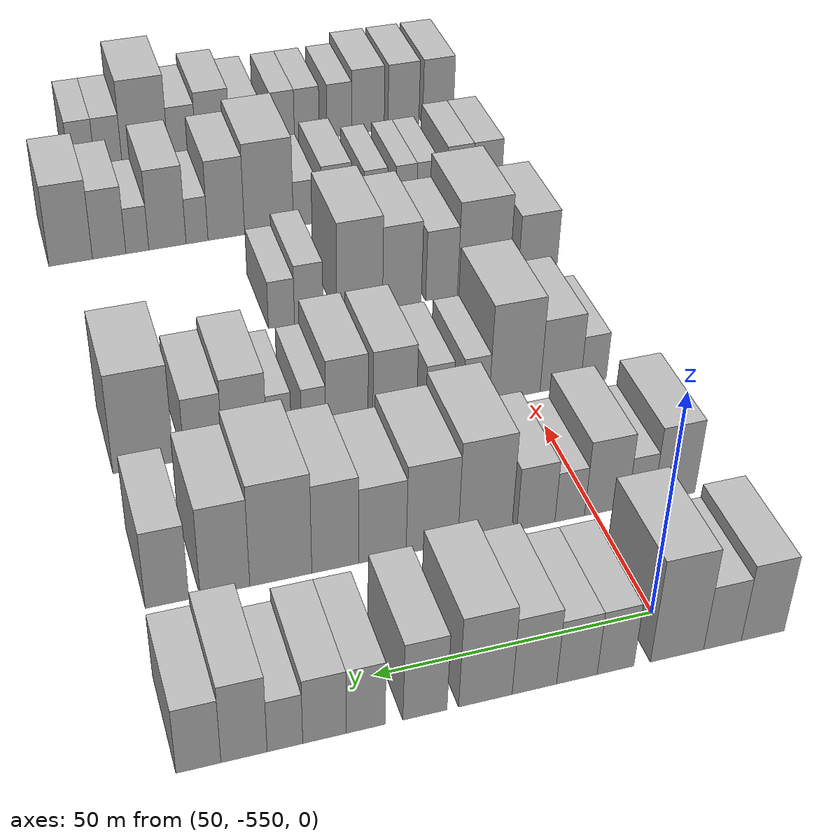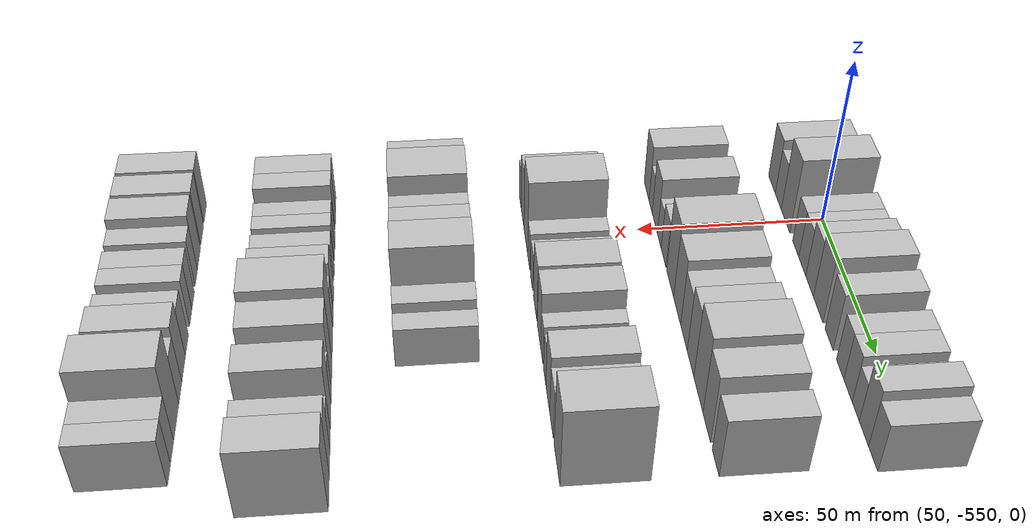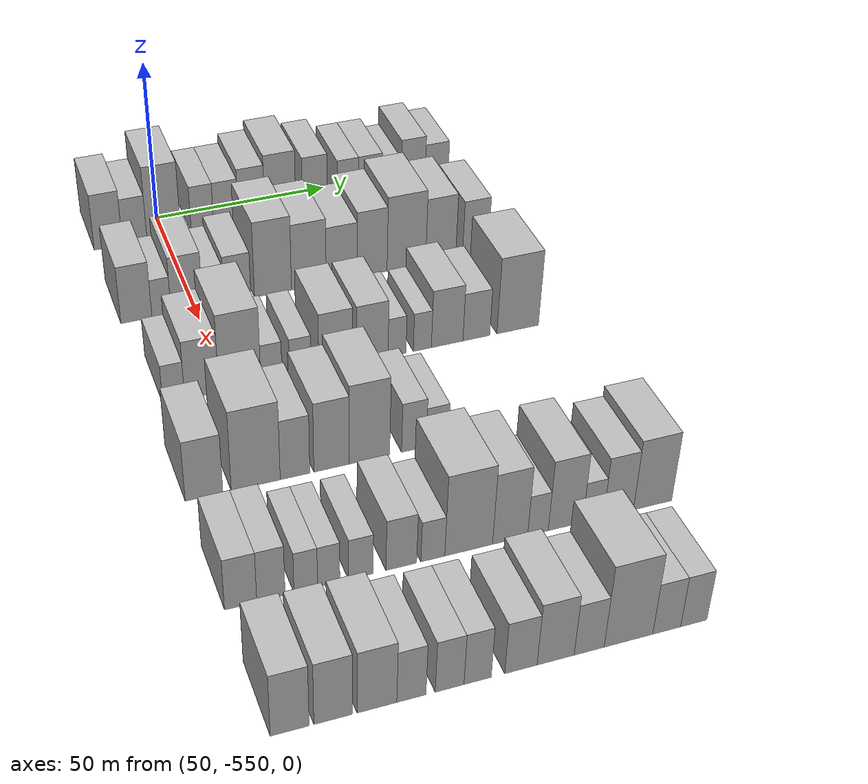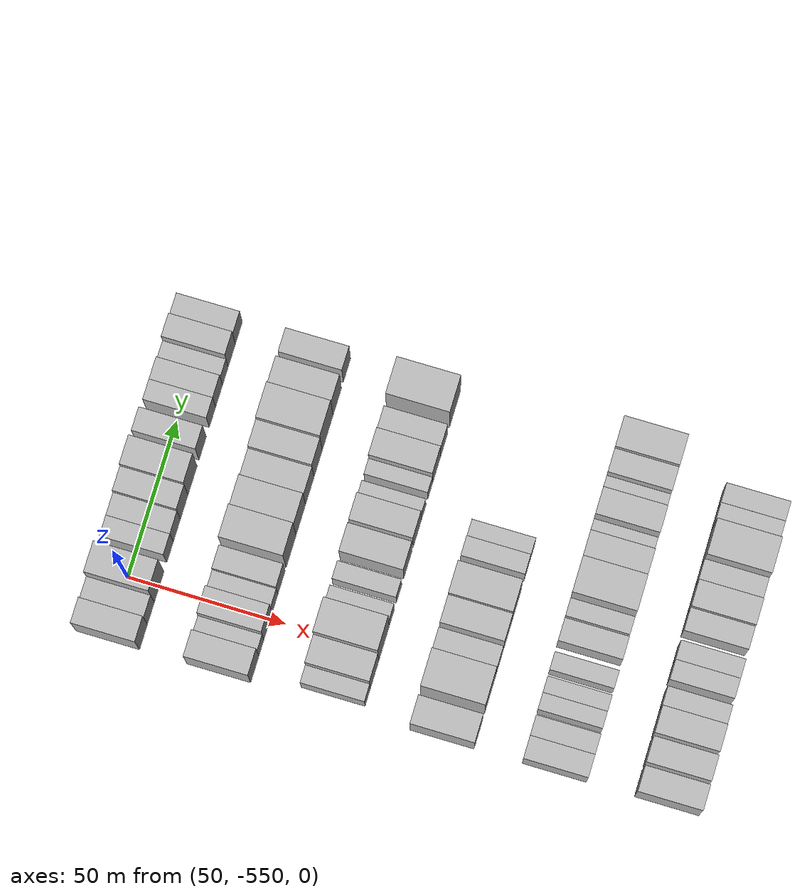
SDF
<sdf version="1.6">
 <world name="default">
  <model name="building_1">
   <static>1</static>
   <pose>50.0000 -565.9921 0 0.000000 0.000000 0.000000</pose>
   <link name="link">
    <pose>0 0 9.00 0 0 0</pose>
    <collision name="collision"><geometry><box><size>20.0000 8.0158 18.0000</size></box></geometry></collision>
    <visual name="visual">
     <cast_shadows>0</cast_shadows>
     <geometry><box><size>20.0000 8.0158 18.0000</size></box></geometry>
     <material>
      <script>
       <uri>model://HANNAS_wall/materials/scripts</uri>
       <uri>model://HANNAS_wall/materials/textures</uri>
       <name>vrc/HANNAS_wall</name>
      </script>
     </material>
    </visual>
   </link>
  </model>
  <model name="building_2">
   <static>1</static>
   <pose>50.0000 -558.4893 0 0.000000 0.000000 0.000000</pose>
   <link name="link">
    <pose>0 0 7.50 0 0 0</pose>
    <collision name="collision"><geometry><box><size>20.0000 6.9898 15.0000</size></box></geometry></collision>
    <visual name="visual">
     <cast_shadows>0</cast_shadows>
     <geometry><box><size>20.0000 6.9898 15.0000</size></box></geometry>
     <material>
      <script>
       <uri>model://HANNAS_wall/materials/scripts</uri>
       <uri>model://HANNAS_wall/materials/textures</uri>
       <name>vrc/HANNAS_wall</name>
      </script>
     </material>
    </visual>
   </link>
  </model>
  <model name="building_3">
   <static>1</static>
   <pose>50.0000 -550.1296 0 0.000000 0.000000 0.000000</pose>
   <link name="link">
    <pose>0 0 12.00 0 0 0</pose>
    <collision name="collision"><geometry><box><size>20.0000 9.7296 24.0000</size></box></geometry></collision>
    <visual name="visual">
     <cast_shadows>0</cast_shadows>
     <geometry><box><size>20.0000 9.7296 24.0000</size></box></geometry>
     <material>
      <script>
       <uri>model://HANNAS_wall/materials/scripts</uri>
       <uri>model://HANNAS_wall/materials/textures</uri>
       <name>vrc/HANNAS_wall</name>
      </script>
     </material>
    </visual>
   </link>
  </model>
  <model name="building_4">
   <static>1</static>
   <pose>50.0000 -538.9763 0 0.000000 0.000000 0.000000</pose>
   <link name="link">
    <pose>0 0 7.50 0 0 0</pose>
    <collision name="collision"><geometry><box><size>20.0000 6.5770 15.0000</size></box></geometry></collision>
    <visual name="visual">
     <cast_shadows>0</cast_shadows>
     <geometry><box><size>20.0000 6.5770 15.0000</size></box></geometry>
     <material>
      <script>
       <uri>model://HANNAS_wall/materials/scripts</uri>
       <uri>model://HANNAS_wall/materials/textures</uri>
       <name>vrc/HANNAS_wall</name>
      </script>
     </material>
    </visual>
   </link>
  </model>
  <model name="building_5">
   <static>1</static>
   <pose>50.0000 -532.0828 0 0.000000 0.000000 0.000000</pose>
   <link name="link">
    <pose>0 0 7.50 0 0 0</pose>
    <collision name="collision"><geometry><box><size>20.0000 7.2101 15.0000</size></box></geometry></collision>
    <visual name="visual">
     <cast_shadows>0</cast_shadows>
     <geometry><box><size>20.0000 7.2101 15.0000</size></box></geometry>
     <material>
      <script>
       <uri>model://HANNAS_wall/materials/scripts</uri>
       <uri>model://HANNAS_wall/materials/textures</uri>
       <name>vrc/HANNAS_wall</name>
      </script>
     </material>
    </visual>
   </link>
  </model>
  <model name="building_6">
   <static>1</static>
   <pose>50.0000 -524.5822 0 0.000000 0.000000 0.000000</pose>
   <link name="link">
    <pose>0 0 9.00 0 0 0</pose>
    <collision name="collision"><geometry><box><size>20.0000 7.7910 18.0000</size></box></geometry></collision>
    <visual name="visual">
     <cast_shadows>0</cast_shadows>
     <geometry><box><size>20.0000 7.7910 18.0000</size></box></geometry>
     <material>
      <script>
       <uri>model://HANNAS_wall/materials/scripts</uri>
       <uri>model://HANNAS_wall/materials/textures</uri>
       <name>vrc/HANNAS_wall</name>
      </script>
     </material>
    </visual>
   </link>
  </model>
  <model name="building_7">
   <static>1</static>
   <pose>50.0000 -516.0581 0 0.000000 0.000000 0.000000</pose>
   <link name="link">
    <pose>0 0 10.50 0 0 0</pose>
    <collision name="collision"><geometry><box><size>20.0000 9.2572 21.0000</size></box></geometry></collision>
    <visual name="visual">
     <cast_shadows>0</cast_shadows>
     <geometry><box><size>20.0000 9.2572 21.0000</size></box></geometry>
     <material>
      <script>
       <uri>model://HANNAS_wall/materials/scripts</uri>
       <uri>model://HANNAS_wall/materials/textures</uri>
       <name>vrc/HANNAS_wall</name>
      </script>
     </material>
    </visual>
   </link>
  </model>
  <model name="building_8">
   <static>1</static>
   <pose>50.0000 -505.6838 0 0.000000 0.000000 0.000000</pose>
   <link name="link">
    <pose>0 0 9.00 0 0 0</pose>
    <collision name="collision"><geometry><box><size>20.0000 7.4913 18.0000</size></box></geometry></collision>
    <visual name="visual">
     <cast_shadows>0</cast_shadows>
     <geometry><box><size>20.0000 7.4913 18.0000</size></box></geometry>
     <material>
      <script>
       <uri>model://HANNAS_wall/materials/scripts</uri>
       <uri>model://HANNAS_wall/materials/textures</uri>
       <name>vrc/HANNAS_wall</name>
      </script>
     </material>
    </visual>
   </link>
  </model>
  <model name="building_9">
   <static>1</static>
   <pose>50.0000 -495.6850 0 0.000000 0.000000 0.000000</pose>
   <link name="link">
    <pose>0 0 7.50 0 0 0</pose>
    <collision name="collision"><geometry><box><size>20.0000 6.5063 15.0000</size></box></geometry></collision>
    <visual name="visual">
     <cast_shadows>0</cast_shadows>
     <geometry><box><size>20.0000 6.5063 15.0000</size></box></geometry>
     <material>
      <script>
       <uri>model://HANNAS_wall/materials/scripts</uri>
       <uri>model://HANNAS_wall/materials/textures</uri>
       <name>vrc/HANNAS_wall</name>
      </script>
     </material>
    </visual>
   </link>
  </model>
  <model name="building_10">
   <static>1</static>
   <pose>50.0000 -488.8466 0 0.000000 0.000000 0.000000</pose>
   <link name="link">
    <pose>0 0 7.50 0 0 0</pose>
    <collision name="collision"><geometry><box><size>20.0000 7.1706 15.0000</size></box></geometry></collision>
    <visual name="visual">
     <cast_shadows>0</cast_shadows>
     <geometry><box><size>20.0000 7.1706 15.0000</size></box></geometry>
     <material>
      <script>
       <uri>model://HANNAS_wall/materials/scripts</uri>
       <uri>model://HANNAS_wall/materials/textures</uri>
       <name>vrc/HANNAS_wall</name>
      </script>
     </material>
    </visual>
   </link>
  </model>
  <model name="building_11">
   <static>1</static>
   <pose>50.0000 -482.3560 0 0.000000 0.000000 0.000000</pose>
   <link name="link">
    <pose>0 0 6.00 0 0 0</pose>
    <collision name="collision"><geometry><box><size>20.0000 5.8106 12.0000</size></box></geometry></collision>
    <visual name="visual">
     <cast_shadows>0</cast_shadows>
     <geometry><box><size>20.0000 5.8106 12.0000</size></box></geometry>
     <material>
      <script>
       <uri>model://HANNAS_wall/materials/scripts</uri>
       <uri>model://HANNAS_wall/materials/textures</uri>
       <name>vrc/HANNAS_wall</name>
      </script>
     </material>
    </visual>
   </link>
  </model>
  <model name="building_12">
   <static>1</static>
   <pose>50.0000 -475.7150 0 0.000000 0.000000 0.000000</pose>
   <link name="link">
    <pose>0 0 9.00 0 0 0</pose>
    <collision name="collision"><geometry><box><size>20.0000 7.4714 18.0000</size></box></geometry></collision>
    <visual name="visual">
     <cast_shadows>0</cast_shadows>
     <geometry><box><size>20.0000 7.4714 18.0000</size></box></geometry>
     <material>
      <script>
       <uri>model://HANNAS_wall/materials/scripts</uri>
       <uri>model://HANNAS_wall/materials/textures</uri>
       <name>vrc/HANNAS_wall</name>
      </script>
     </material>
    </visual>
   </link>
  </model>
  <model name="building_13">
   <static>1</static>
   <pose>50.0000 -468.3772 0 0.000000 0.000000 0.000000</pose>
   <link name="link">
    <pose>0 0 7.50 0 0 0</pose>
    <collision name="collision"><geometry><box><size>20.0000 7.2043 15.0000</size></box></geometry></collision>
    <visual name="visual">
     <cast_shadows>0</cast_shadows>
     <geometry><box><size>20.0000 7.2043 15.0000</size></box></geometry>
     <material>
      <script>
       <uri>model://HANNAS_wall/materials/scripts</uri>
       <uri>model://HANNAS_wall/materials/textures</uri>
       <name>vrc/HANNAS_wall</name>
      </script>
     </material>
    </visual>
   </link>
  </model>
  <model name="building_125">
   <static>1</static>
   <pose>85.0000 -565.8292 0 0.000000 0.000000 0.000000</pose>
   <link name="link">
    <pose>0 0 9.00 0 0 0</pose>
    <collision name="collision"><geometry><box><size>20.0000 8.3416 18.0000</size></box></geometry></collision>
    <visual name="visual">
     <cast_shadows>0</cast_shadows>
     <geometry><box><size>20.0000 8.3416 18.0000</size></box></geometry>
     <material>
      <script>
       <uri>model://HANNAS_wall/materials/scripts</uri>
       <uri>model://HANNAS_wall/materials/textures</uri>
       <name>vrc/HANNAS_wall</name>
      </script>
     </material>
    </visual>
   </link>
  </model>
  <model name="building_126">
   <static>1</static>
   <pose>85.0000 -559.0594 0 0.000000 0.000000 0.000000</pose>
   <link name="link">
    <pose>0 0 6.00 0 0 0</pose>
    <collision name="collision"><geometry><box><size>20.0000 5.1981 12.0000</size></box></geometry></collision>
    <visual name="visual">
     <cast_shadows>0</cast_shadows>
     <geometry><box><size>20.0000 5.1981 12.0000</size></box></geometry>
     <material>
      <script>
       <uri>model://HANNAS_wall/materials/scripts</uri>
       <uri>model://HANNAS_wall/materials/textures</uri>
       <name>vrc/HANNAS_wall</name>
      </script>
     </material>
    </visual>
   </link>
  </model>
  <model name="building_127">
   <static>1</static>
   <pose>85.0000 -552.1614 0 0.000000 0.000000 0.000000</pose>
   <link name="link">
    <pose>0 0 9.00 0 0 0</pose>
    <collision name="collision"><geometry><box><size>20.0000 8.5979 18.0000</size></box></geometry></collision>
    <visual name="visual">
     <cast_shadows>0</cast_shadows>
     <geometry><box><size>20.0000 8.5979 18.0000</size></box></geometry>
     <material>
      <script>
       <uri>model://HANNAS_wall/materials/scripts</uri>
       <uri>model://HANNAS_wall/materials/textures</uri>
       <name>vrc/HANNAS_wall</name>
      </script>
     </material>
    </visual>
   </link>
  </model>
  <model name="building_128">
   <static>1</static>
   <pose>85.0000 -544.9417 0 0.000000 0.000000 0.000000</pose>
   <link name="link">
    <pose>0 0 6.00 0 0 0</pose>
    <collision name="collision"><geometry><box><size>20.0000 5.8415 12.0000</size></box></geometry></collision>
    <visual name="visual">
     <cast_shadows>0</cast_shadows>
     <geometry><box><size>20.0000 5.8415 12.0000</size></box></geometry>
     <material>
      <script>
       <uri>model://HANNAS_wall/materials/scripts</uri>
       <uri>model://HANNAS_wall/materials/textures</uri>
       <name>vrc/HANNAS_wall</name>
      </script>
     </material>
    </visual>
   </link>
  </model>
  <model name="building_129">
   <static>1</static>
   <pose>85.0000 -538.3204 0 0.000000 0.000000 0.000000</pose>
   <link name="link">
    <pose>0 0 7.50 0 0 0</pose>
    <collision name="collision"><geometry><box><size>20.0000 7.4013 15.0000</size></box></geometry></collision>
    <visual name="visual">
     <cast_shadows>0</cast_shadows>
     <geometry><box><size>20.0000 7.4013 15.0000</size></box></geometry>
     <material>
      <script>
       <uri>model://HANNAS_wall/materials/scripts</uri>
       <uri>model://HANNAS_wall/materials/textures</uri>
       <name>vrc/HANNAS_wall</name>
      </script>
     </material>
    </visual>
   </link>
  </model>
  <model name="building_130">
   <static>1</static>
   <pose>85.0000 -528.4591 0 0.000000 0.000000 0.000000</pose>
   <link name="link">
    <pose>0 0 12.00 0 0 0</pose>
    <collision name="collision"><geometry><box><size>20.0000 10.3213 24.0000</size></box></geometry></collision>
    <visual name="visual">
     <cast_shadows>0</cast_shadows>
     <geometry><box><size>20.0000 10.3213 24.0000</size></box></geometry>
     <material>
      <script>
       <uri>model://HANNAS_wall/materials/scripts</uri>
       <uri>model://HANNAS_wall/materials/textures</uri>
       <name>vrc/HANNAS_wall</name>
      </script>
     </material>
    </visual>
   </link>
  </model>
  <model name="building_131">
   <static>1</static>
   <pose>85.0000 -518.3940 0 0.000000 0.000000 0.000000</pose>
   <link name="link">
    <pose>0 0 10.50 0 0 0</pose>
    <collision name="collision"><geometry><box><size>20.0000 9.8088 21.0000</size></box></geometry></collision>
    <visual name="visual">
     <cast_shadows>0</cast_shadows>
     <geometry><box><size>20.0000 9.8088 21.0000</size></box></geometry>
     <material>
      <script>
       <uri>model://HANNAS_wall/materials/scripts</uri>
       <uri>model://HANNAS_wall/materials/textures</uri>
       <name>vrc/HANNAS_wall</name>
      </script>
     </material>
    </visual>
   </link>
  </model>
  <model name="building_132">
   <static>1</static>
   <pose>85.0000 -509.0591 0 0.000000 0.000000 0.000000</pose>
   <link name="link">
    <pose>0 0 9.00 0 0 0</pose>
    <collision name="collision"><geometry><box><size>20.0000 8.8610 18.0000</size></box></geometry></collision>
    <visual name="visual">
     <cast_shadows>0</cast_shadows>
     <geometry><box><size>20.0000 8.8610 18.0000</size></box></geometry>
     <material>
      <script>
       <uri>model://HANNAS_wall/materials/scripts</uri>
       <uri>model://HANNAS_wall/materials/textures</uri>
       <name>vrc/HANNAS_wall</name>
      </script>
     </material>
    </visual>
   </link>
  </model>
  <model name="building_133">
   <static>1</static>
   <pose>85.0000 -500.3334 0 0.000000 0.000000 0.000000</pose>
   <link name="link">
    <pose>0 0 10.50 0 0 0</pose>
    <collision name="collision"><geometry><box><size>20.0000 8.5903 21.0000</size></box></geometry></collision>
    <visual name="visual">
     <cast_shadows>0</cast_shadows>
     <geometry><box><size>20.0000 8.5903 21.0000</size></box></geometry>
     <material>
      <script>
       <uri>model://HANNAS_wall/materials/scripts</uri>
       <uri>model://HANNAS_wall/materials/textures</uri>
       <name>vrc/HANNAS_wall</name>
      </script>
     </material>
    </visual>
   </link>
  </model>
  <model name="building_134">
   <static>1</static>
   <pose>85.0000 -490.4166 0 0.000000 0.000000 0.000000</pose>
   <link name="link">
    <pose>0 0 12.00 0 0 0</pose>
    <collision name="collision"><geometry><box><size>20.0000 11.2434 24.0000</size></box></geometry></collision>
    <visual name="visual">
     <cast_shadows>0</cast_shadows>
     <geometry><box><size>20.0000 11.2434 24.0000</size></box></geometry>
     <material>
      <script>
       <uri>model://HANNAS_wall/materials/scripts</uri>
       <uri>model://HANNAS_wall/materials/textures</uri>
       <name>vrc/HANNAS_wall</name>
      </script>
     </material>
    </visual>
   </link>
  </model>
  <model name="building_135">
   <static>1</static>
   <pose>85.0000 -480.3607 0 0.000000 0.000000 0.000000</pose>
   <link name="link">
    <pose>0 0 10.50 0 0 0</pose>
    <collision name="collision"><geometry><box><size>20.0000 8.8685 21.0000</size></box></geometry></collision>
    <visual name="visual">
     <cast_shadows>0</cast_shadows>
     <geometry><box><size>20.0000 8.8685 21.0000</size></box></geometry>
     <material>
      <script>
       <uri>model://HANNAS_wall/materials/scripts</uri>
       <uri>model://HANNAS_wall/materials/textures</uri>
       <name>vrc/HANNAS_wall</name>
      </script>
     </material>
    </visual>
   </link>
  </model>
  <model name="building_136">
   <static>1</static>
   <pose>85.0000 -470.0958 0 0.000000 0.000000 0.000000</pose>
   <link name="link">
    <pose>0 0 9.00 0 0 0</pose>
    <collision name="collision"><geometry><box><size>20.0000 7.6611 18.0000</size></box></geometry></collision>
    <visual name="visual">
     <cast_shadows>0</cast_shadows>
     <geometry><box><size>20.0000 7.6611 18.0000</size></box></geometry>
     <material>
      <script>
       <uri>model://HANNAS_wall/materials/scripts</uri>
       <uri>model://HANNAS_wall/materials/textures</uri>
       <name>vrc/HANNAS_wall</name>
      </script>
     </material>
    </visual>
   </link>
  </model>
  <model name="building_254">
   <static>1</static>
   <pose>120.0000 -564.2297 0 0.000000 0.000000 0.000000</pose>
   <link name="link">
    <pose>0 0 6.00 0 0 0</pose>
    <collision name="collision"><geometry><box><size>20.0000 5.5406 12.0000</size></box></geometry></collision>
    <visual name="visual">
     <cast_shadows>0</cast_shadows>
     <geometry><box><size>20.0000 5.5406 12.0000</size></box></geometry>
     <material>
      <script>
       <uri>model://HANNAS_wall/materials/scripts</uri>
       <uri>model://HANNAS_wall/materials/textures</uri>
       <name>vrc/HANNAS_wall</name>
      </script>
     </material>
    </visual>
   </link>
  </model>
  <model name="building_255">
   <static>1</static>
   <pose>120.0000 -557.0801 0 0.000000 0.000000 0.000000</pose>
   <link name="link">
    <pose>0 0 9.00 0 0 0</pose>
    <collision name="collision"><geometry><box><size>20.0000 8.7586 18.0000</size></box></geometry></collision>
    <visual name="visual">
     <cast_shadows>0</cast_shadows>
     <geometry><box><size>20.0000 8.7586 18.0000</size></box></geometry>
     <material>
      <script>
       <uri>model://HANNAS_wall/materials/scripts</uri>
       <uri>model://HANNAS_wall/materials/textures</uri>
       <name>vrc/HANNAS_wall</name>
      </script>
     </material>
    </visual>
   </link>
  </model>
  <model name="building_256">
   <static>1</static>
   <pose>120.0000 -547.2849 0 0.000000 0.000000 0.000000</pose>
   <link name="link">
    <pose>0 0 12.00 0 0 0</pose>
    <collision name="collision"><geometry><box><size>20.0000 10.8317 24.0000</size></box></geometry></collision>
    <visual name="visual">
     <cast_shadows>0</cast_shadows>
     <geometry><box><size>20.0000 10.8317 24.0000</size></box></geometry>
     <material>
      <script>
       <uri>model://HANNAS_wall/materials/scripts</uri>
       <uri>model://HANNAS_wall/materials/textures</uri>
       <name>vrc/HANNAS_wall</name>
      </script>
     </material>
    </visual>
   </link>
  </model>
  <model name="building_257">
   <static>1</static>
   <pose>120.0000 -539.1051 0 0.000000 0.000000 0.000000</pose>
   <link name="link">
    <pose>0 0 6.00 0 0 0</pose>
    <collision name="collision"><geometry><box><size>20.0000 5.5280 12.0000</size></box></geometry></collision>
    <visual name="visual">
     <cast_shadows>0</cast_shadows>
     <geometry><box><size>20.0000 5.5280 12.0000</size></box></geometry>
     <material>
      <script>
       <uri>model://HANNAS_wall/materials/scripts</uri>
       <uri>model://HANNAS_wall/materials/textures</uri>
       <name>vrc/HANNAS_wall</name>
      </script>
     </material>
    </visual>
   </link>
  </model>
  <model name="building_258">
   <static>1</static>
   <pose>120.0000 -531.5029 0 0.000000 0.000000 0.000000</pose>
   <link name="link">
    <pose>0 0 6.00 0 0 0</pose>
    <collision name="collision"><geometry><box><size>20.0000 5.6763 12.0000</size></box></geometry></collision>
    <visual name="visual">
     <cast_shadows>0</cast_shadows>
     <geometry><box><size>20.0000 5.6763 12.0000</size></box></geometry>
     <material>
      <script>
       <uri>model://HANNAS_wall/materials/scripts</uri>
       <uri>model://HANNAS_wall/materials/textures</uri>
       <name>vrc/HANNAS_wall</name>
      </script>
     </material>
    </visual>
   </link>
  </model>
  <model name="building_259">
   <static>1</static>
   <pose>120.0000 -522.1753 0 0.000000 0.000000 0.000000</pose>
   <link name="link">
    <pose>0 0 9.00 0 0 0</pose>
    <collision name="collision"><geometry><box><size>20.0000 8.9789 18.0000</size></box></geometry></collision>
    <visual name="visual">
     <cast_shadows>0</cast_shadows>
     <geometry><box><size>20.0000 8.9789 18.0000</size></box></geometry>
     <material>
      <script>
       <uri>model://HANNAS_wall/materials/scripts</uri>
       <uri>model://HANNAS_wall/materials/textures</uri>
       <name>vrc/HANNAS_wall</name>
      </script>
     </material>
    </visual>
   </link>
  </model>
  <model name="building_260">
   <static>1</static>
   <pose>120.0000 -512.4110 0 0.000000 0.000000 0.000000</pose>
   <link name="link">
    <pose>0 0 9.00 0 0 0</pose>
    <collision name="collision"><geometry><box><size>20.0000 8.5497 18.0000</size></box></geometry></collision>
    <visual name="visual">
     <cast_shadows>0</cast_shadows>
     <geometry><box><size>20.0000 8.5497 18.0000</size></box></geometry>
     <material>
      <script>
       <uri>model://HANNAS_wall/materials/scripts</uri>
       <uri>model://HANNAS_wall/materials/textures</uri>
       <name>vrc/HANNAS_wall</name>
      </script>
     </material>
    </visual>
   </link>
  </model>
  <model name="building_261">
   <static>1</static>
   <pose>120.0000 -505.6870 0 0.000000 0.000000 0.000000</pose>
   <link name="link">
    <pose>0 0 6.00 0 0 0</pose>
    <collision name="collision"><geometry><box><size>20.0000 4.8983 12.0000</size></box></geometry></collision>
    <visual name="visual">
     <cast_shadows>0</cast_shadows>
     <geometry><box><size>20.0000 4.8983 12.0000</size></box></geometry>
     <material>
      <script>
       <uri>model://HANNAS_wall/materials/scripts</uri>
       <uri>model://HANNAS_wall/materials/textures</uri>
       <name>vrc/HANNAS_wall</name>
      </script>
     </material>
    </visual>
   </link>
  </model>
  <model name="building_262">
   <static>1</static>
   <pose>120.0000 -498.7695 0 0.000000 0.000000 0.000000</pose>
   <link name="link">
    <pose>0 0 6.00 0 0 0</pose>
    <collision name="collision"><geometry><box><size>20.0000 4.9367 12.0000</size></box></geometry></collision>
    <visual name="visual">
     <cast_shadows>0</cast_shadows>
     <geometry><box><size>20.0000 4.9367 12.0000</size></box></geometry>
     <material>
      <script>
       <uri>model://HANNAS_wall/materials/scripts</uri>
       <uri>model://HANNAS_wall/materials/textures</uri>
       <name>vrc/HANNAS_wall</name>
      </script>
     </material>
    </visual>
   </link>
  </model>
  <model name="building_263">
   <static>1</static>
   <pose>120.0000 -491.9467 0 0.000000 0.000000 0.000000</pose>
   <link name="link">
    <pose>0 0 9.00 0 0 0</pose>
    <collision name="collision"><geometry><box><size>20.0000 8.7089 18.0000</size></box></geometry></collision>
    <visual name="visual">
     <cast_shadows>0</cast_shadows>
     <geometry><box><size>20.0000 8.7089 18.0000</size></box></geometry>
     <material>
      <script>
       <uri>model://HANNAS_wall/materials/scripts</uri>
       <uri>model://HANNAS_wall/materials/textures</uri>
       <name>vrc/HANNAS_wall</name>
      </script>
     </material>
    </visual>
   </link>
  </model>
  <model name="building_264">
   <static>1</static>
   <pose>120.0000 -483.8499 0 0.000000 0.000000 0.000000</pose>
   <link name="link">
    <pose>0 0 7.50 0 0 0</pose>
    <collision name="collision"><geometry><box><size>20.0000 7.4847 15.0000</size></box></geometry></collision>
    <visual name="visual">
     <cast_shadows>0</cast_shadows>
     <geometry><box><size>20.0000 7.4847 15.0000</size></box></geometry>
     <material>
      <script>
       <uri>model://HANNAS_wall/materials/scripts</uri>
       <uri>model://HANNAS_wall/materials/textures</uri>
       <name>vrc/HANNAS_wall</name>
      </script>
     </material>
    </visual>
   </link>
  </model>
  <model name="building_265">
   <static>1</static>
   <pose>120.0000 -472.2517 0 0.000000 0.000000 0.000000</pose>
   <link name="link">
    <pose>0 0 12.00 0 0 0</pose>
    <collision name="collision"><geometry><box><size>20.0000 11.7115 24.0000</size></box></geometry></collision>
    <visual name="visual">
     <cast_shadows>0</cast_shadows>
     <geometry><box><size>20.0000 11.7115 24.0000</size></box></geometry>
     <material>
      <script>
       <uri>model://HANNAS_wall/materials/scripts</uri>
       <uri>model://HANNAS_wall/materials/textures</uri>
       <name>vrc/HANNAS_wall</name>
      </script>
     </material>
    </visual>
   </link>
  </model>
  <model name="building_386">
   <static>1</static>
   <pose>155.0000 -565.5117 0 0.000000 0.000000 0.000000</pose>
   <link name="link">
    <pose>0 0 9.00 0 0 0</pose>
    <collision name="collision"><geometry><box><size>20.0000 8.9766 18.0000</size></box></geometry></collision>
    <visual name="visual">
     <cast_shadows>0</cast_shadows>
     <geometry><box><size>20.0000 8.9766 18.0000</size></box></geometry>
     <material>
      <script>
       <uri>model://HANNAS_wall/materials/scripts</uri>
       <uri>model://HANNAS_wall/materials/textures</uri>
       <name>vrc/HANNAS_wall</name>
      </script>
     </material>
    </visual>
   </link>
  </model>
  <model name="building_387">
   <static>1</static>
   <pose>155.0000 -553.1045 0 0.000000 0.000000 0.000000</pose>
   <link name="link">
    <pose>0 0 12.00 0 0 0</pose>
    <collision name="collision"><geometry><box><size>20.0000 11.8378 24.0000</size></box></geometry></collision>
    <visual name="visual">
     <cast_shadows>0</cast_shadows>
     <geometry><box><size>20.0000 11.8378 24.0000</size></box></geometry>
     <material>
      <script>
       <uri>model://HANNAS_wall/materials/scripts</uri>
       <uri>model://HANNAS_wall/materials/textures</uri>
       <name>vrc/HANNAS_wall</name>
      </script>
     </material>
    </visual>
   </link>
  </model>
  <model name="building_388">
   <static>1</static>
   <pose>155.0000 -543.5742 0 0.000000 0.000000 0.000000</pose>
   <link name="link">
    <pose>0 0 9.00 0 0 0</pose>
    <collision name="collision"><geometry><box><size>20.0000 7.2228 18.0000</size></box></geometry></collision>
    <visual name="visual">
     <cast_shadows>0</cast_shadows>
     <geometry><box><size>20.0000 7.2228 18.0000</size></box></geometry>
     <material>
      <script>
       <uri>model://HANNAS_wall/materials/scripts</uri>
       <uri>model://HANNAS_wall/materials/textures</uri>
       <name>vrc/HANNAS_wall</name>
      </script>
     </material>
    </visual>
   </link>
  </model>
  <model name="building_389">
   <static>1</static>
   <pose>155.0000 -534.6074 0 0.000000 0.000000 0.000000</pose>
   <link name="link">
    <pose>0 0 10.50 0 0 0</pose>
    <collision name="collision"><geometry><box><size>20.0000 8.7108 21.0000</size></box></geometry></collision>
    <visual name="visual">
     <cast_shadows>0</cast_shadows>
     <geometry><box><size>20.0000 8.7108 21.0000</size></box></geometry>
     <material>
      <script>
       <uri>model://HANNAS_wall/materials/scripts</uri>
       <uri>model://HANNAS_wall/materials/textures</uri>
       <name>vrc/HANNAS_wall</name>
      </script>
     </material>
    </visual>
   </link>
  </model>
  <model name="building_390">
   <static>1</static>
   <pose>155.0000 -525.1703 0 0.000000 0.000000 0.000000</pose>
   <link name="link">
    <pose>0 0 12.00 0 0 0</pose>
    <collision name="collision"><geometry><box><size>20.0000 10.1635 24.0000</size></box></geometry></collision>
    <visual name="visual">
     <cast_shadows>0</cast_shadows>
     <geometry><box><size>20.0000 10.1635 24.0000</size></box></geometry>
     <material>
      <script>
       <uri>model://HANNAS_wall/materials/scripts</uri>
       <uri>model://HANNAS_wall/materials/textures</uri>
       <name>vrc/HANNAS_wall</name>
      </script>
     </material>
    </visual>
   </link>
  </model>
  <model name="building_391">
   <static>1</static>
   <pose>155.0000 -513.9568 0 0.000000 0.000000 0.000000</pose>
   <link name="link">
    <pose>0 0 7.50 0 0 0</pose>
    <collision name="collision"><geometry><box><size>20.0000 6.2633 15.0000</size></box></geometry></collision>
    <visual name="visual">
     <cast_shadows>0</cast_shadows>
     <geometry><box><size>20.0000 6.2633 15.0000</size></box></geometry>
     <material>
      <script>
       <uri>model://HANNAS_wall/materials/scripts</uri>
       <uri>model://HANNAS_wall/materials/textures</uri>
       <name>vrc/HANNAS_wall</name>
      </script>
     </material>
    </visual>
   </link>
  </model>
  <model name="building_392">
   <static>1</static>
   <pose>155.0000 -507.9828 0 0.000000 0.000000 0.000000</pose>
   <link name="link">
    <pose>0 0 6.00 0 0 0</pose>
    <collision name="collision"><geometry><box><size>20.0000 5.6847 12.0000</size></box></geometry></collision>
    <visual name="visual">
     <cast_shadows>0</cast_shadows>
     <geometry><box><size>20.0000 5.6847 12.0000</size></box></geometry>
     <material>
      <script>
       <uri>model://HANNAS_wall/materials/scripts</uri>
       <uri>model://HANNAS_wall/materials/textures</uri>
       <name>vrc/HANNAS_wall</name>
      </script>
     </material>
    </visual>
   </link>
  </model>
  <model name="building_509">
   <static>1</static>
   <pose>190.0000 -566.4035 0 0.000000 0.000000 0.000000</pose>
   <link name="link">
    <pose>0 0 7.50 0 0 0</pose>
    <collision name="collision"><geometry><box><size>20.0000 7.1930 15.0000</size></box></geometry></collision>
    <visual name="visual">
     <cast_shadows>0</cast_shadows>
     <geometry><box><size>20.0000 7.1930 15.0000</size></box></geometry>
     <material>
      <script>
       <uri>model://HANNAS_wall/materials/scripts</uri>
       <uri>model://HANNAS_wall/materials/textures</uri>
       <name>vrc/HANNAS_wall</name>
      </script>
     </material>
    </visual>
   </link>
  </model>
  <model name="building_510">
   <static>1</static>
   <pose>190.0000 -559.6296 0 0.000000 0.000000 0.000000</pose>
   <link name="link">
    <pose>0 0 7.50 0 0 0</pose>
    <collision name="collision"><geometry><box><size>20.0000 6.3548 15.0000</size></box></geometry></collision>
    <visual name="visual">
     <cast_shadows>0</cast_shadows>
     <geometry><box><size>20.0000 6.3548 15.0000</size></box></geometry>
     <material>
      <script>
       <uri>model://HANNAS_wall/materials/scripts</uri>
       <uri>model://HANNAS_wall/materials/textures</uri>
       <name>vrc/HANNAS_wall</name>
      </script>
     </material>
    </visual>
   </link>
  </model>
  <model name="building_511">
   <static>1</static>
   <pose>190.0000 -551.7834 0 0.000000 0.000000 0.000000</pose>
   <link name="link">
    <pose>0 0 6.00 0 0 0</pose>
    <collision name="collision"><geometry><box><size>20.0000 5.3376 12.0000</size></box></geometry></collision>
    <visual name="visual">
     <cast_shadows>0</cast_shadows>
     <geometry><box><size>20.0000 5.3376 12.0000</size></box></geometry>
     <material>
      <script>
       <uri>model://HANNAS_wall/materials/scripts</uri>
       <uri>model://HANNAS_wall/materials/textures</uri>
       <name>vrc/HANNAS_wall</name>
      </script>
     </material>
    </visual>
   </link>
  </model>
  <model name="building_512">
   <static>1</static>
   <pose>190.0000 -546.5651 0 0.000000 0.000000 0.000000</pose>
   <link name="link">
    <pose>0 0 6.00 0 0 0</pose>
    <collision name="collision"><geometry><box><size>20.0000 5.0991 12.0000</size></box></geometry></collision>
    <visual name="visual">
     <cast_shadows>0</cast_shadows>
     <geometry><box><size>20.0000 5.0991 12.0000</size></box></geometry>
     <material>
      <script>
       <uri>model://HANNAS_wall/materials/scripts</uri>
       <uri>model://HANNAS_wall/materials/textures</uri>
       <name>vrc/HANNAS_wall</name>
      </script>
     </material>
    </visual>
   </link>
  </model>
  <model name="building_513">
   <static>1</static>
   <pose>190.0000 -539.1882 0 0.000000 0.000000 0.000000</pose>
   <link name="link">
    <pose>0 0 6.00 0 0 0</pose>
    <collision name="collision"><geometry><box><size>20.0000 5.6548 12.0000</size></box></geometry></collision>
    <visual name="visual">
     <cast_shadows>0</cast_shadows>
     <geometry><box><size>20.0000 5.6548 12.0000</size></box></geometry>
     <material>
      <script>
       <uri>model://HANNAS_wall/materials/scripts</uri>
       <uri>model://HANNAS_wall/materials/textures</uri>
       <name>vrc/HANNAS_wall</name>
      </script>
     </material>
    </visual>
   </link>
  </model>
  <model name="building_514">
   <static>1</static>
   <pose>190.0000 -529.7560 0 0.000000 0.000000 0.000000</pose>
   <link name="link">
    <pose>0 0 7.50 0 0 0</pose>
    <collision name="collision"><geometry><box><size>20.0000 7.2096 15.0000</size></box></geometry></collision>
    <visual name="visual">
     <cast_shadows>0</cast_shadows>
     <geometry><box><size>20.0000 7.2096 15.0000</size></box></geometry>
     <material>
      <script>
       <uri>model://HANNAS_wall/materials/scripts</uri>
       <uri>model://HANNAS_wall/materials/textures</uri>
       <name>vrc/HANNAS_wall</name>
      </script>
     </material>
    </visual>
   </link>
  </model>
  <model name="building_515">
   <static>1</static>
   <pose>190.0000 -522.3329 0 0.000000 0.000000 0.000000</pose>
   <link name="link">
    <pose>0 0 6.00 0 0 0</pose>
    <collision name="collision"><geometry><box><size>20.0000 5.6365 12.0000</size></box></geometry></collision>
    <visual name="visual">
     <cast_shadows>0</cast_shadows>
     <geometry><box><size>20.0000 5.6365 12.0000</size></box></geometry>
     <material>
      <script>
       <uri>model://HANNAS_wall/materials/scripts</uri>
       <uri>model://HANNAS_wall/materials/textures</uri>
       <name>vrc/HANNAS_wall</name>
      </script>
     </material>
    </visual>
   </link>
  </model>
  <model name="building_516">
   <static>1</static>
   <pose>190.0000 -513.7958 0 0.000000 0.000000 0.000000</pose>
   <link name="link">
    <pose>0 0 12.00 0 0 0</pose>
    <collision name="collision"><geometry><box><size>20.0000 11.4377 24.0000</size></box></geometry></collision>
    <visual name="visual">
     <cast_shadows>0</cast_shadows>
     <geometry><box><size>20.0000 11.4377 24.0000</size></box></geometry>
     <material>
      <script>
       <uri>model://HANNAS_wall/materials/scripts</uri>
       <uri>model://HANNAS_wall/materials/textures</uri>
       <name>vrc/HANNAS_wall</name>
      </script>
     </material>
    </visual>
   </link>
  </model>
  <model name="building_517">
   <static>1</static>
   <pose>190.0000 -503.8273 0 0.000000 0.000000 0.000000</pose>
   <link name="link">
    <pose>0 0 10.50 0 0 0</pose>
    <collision name="collision"><geometry><box><size>20.0000 8.4991 21.0000</size></box></geometry></collision>
    <visual name="visual">
     <cast_shadows>0</cast_shadows>
     <geometry><box><size>20.0000 8.4991 21.0000</size></box></geometry>
     <material>
      <script>
       <uri>model://HANNAS_wall/materials/scripts</uri>
       <uri>model://HANNAS_wall/materials/textures</uri>
       <name>vrc/HANNAS_wall</name>
      </script>
     </material>
    </visual>
   </link>
  </model>
  <model name="building_518">
   <static>1</static>
   <pose>190.0000 -497.0584 0 0.000000 0.000000 0.000000</pose>
   <link name="link">
    <pose>0 0 6.00 0 0 0</pose>
    <collision name="collision"><geometry><box><size>20.0000 5.0387 12.0000</size></box></geometry></collision>
    <visual name="visual">
     <cast_shadows>0</cast_shadows>
     <geometry><box><size>20.0000 5.0387 12.0000</size></box></geometry>
     <material>
      <script>
       <uri>model://HANNAS_wall/materials/scripts</uri>
       <uri>model://HANNAS_wall/materials/textures</uri>
       <name>vrc/HANNAS_wall</name>
      </script>
     </material>
    </visual>
   </link>
  </model>
  <model name="building_519">
   <static>1</static>
   <pose>190.0000 -490.2788 0 0.000000 0.000000 0.000000</pose>
   <link name="link">
    <pose>0 0 10.50 0 0 0</pose>
    <collision name="collision"><geometry><box><size>20.0000 8.5206 21.0000</size></box></geometry></collision>
    <visual name="visual">
     <cast_shadows>0</cast_shadows>
     <geometry><box><size>20.0000 8.5206 21.0000</size></box></geometry>
     <material>
      <script>
       <uri>model://HANNAS_wall/materials/scripts</uri>
       <uri>model://HANNAS_wall/materials/textures</uri>
       <name>vrc/HANNAS_wall</name>
      </script>
     </material>
    </visual>
   </link>
  </model>
  <model name="building_520">
   <static>1</static>
   <pose>190.0000 -483.4236 0 0.000000 0.000000 0.000000</pose>
   <link name="link">
    <pose>0 0 6.00 0 0 0</pose>
    <collision name="collision"><geometry><box><size>20.0000 5.1897 12.0000</size></box></geometry></collision>
    <visual name="visual">
     <cast_shadows>0</cast_shadows>
     <geometry><box><size>20.0000 5.1897 12.0000</size></box></geometry>
     <material>
      <script>
       <uri>model://HANNAS_wall/materials/scripts</uri>
       <uri>model://HANNAS_wall/materials/textures</uri>
       <name>vrc/HANNAS_wall</name>
      </script>
     </material>
    </visual>
   </link>
  </model>
  <model name="building_521">
   <static>1</static>
   <pose>190.0000 -477.0783 0 0.000000 0.000000 0.000000</pose>
   <link name="link">
    <pose>0 0 9.00 0 0 0</pose>
    <collision name="collision"><geometry><box><size>20.0000 7.5009 18.0000</size></box></geometry></collision>
    <visual name="visual">
     <cast_shadows>0</cast_shadows>
     <geometry><box><size>20.0000 7.5009 18.0000</size></box></geometry>
     <material>
      <script>
       <uri>model://HANNAS_wall/materials/scripts</uri>
       <uri>model://HANNAS_wall/materials/textures</uri>
       <name>vrc/HANNAS_wall</name>
      </script>
     </material>
    </visual>
   </link>
  </model>
  <model name="building_522">
   <static>1</static>
   <pose>190.0000 -468.4686 0 0.000000 0.000000 0.000000</pose>
   <link name="link">
    <pose>0 0 10.50 0 0 0</pose>
    <collision name="collision"><geometry><box><size>20.0000 9.7185 21.0000</size></box></geometry></collision>
    <visual name="visual">
     <cast_shadows>0</cast_shadows>
     <geometry><box><size>20.0000 9.7185 21.0000</size></box></geometry>
     <material>
      <script>
       <uri>model://HANNAS_wall/materials/scripts</uri>
       <uri>model://HANNAS_wall/materials/textures</uri>
       <name>vrc/HANNAS_wall</name>
      </script>
     </material>
    </visual>
   </link>
  </model>
  <model name="building_639">
   <static>1</static>
   <pose>225.0000 -565.9661 0 0.000000 0.000000 0.000000</pose>
   <link name="link">
    <pose>0 0 9.00 0 0 0</pose>
    <collision name="collision"><geometry><box><size>20.0000 8.0679 18.0000</size></box></geometry></collision>
    <visual name="visual">
     <cast_shadows>0</cast_shadows>
     <geometry><box><size>20.0000 8.0679 18.0000</size></box></geometry>
     <material>
      <script>
       <uri>model://HANNAS_wall/materials/scripts</uri>
       <uri>model://HANNAS_wall/materials/textures</uri>
       <name>vrc/HANNAS_wall</name>
      </script>
     </material>
    </visual>
   </link>
  </model>
  <model name="building_640">
   <static>1</static>
   <pose>225.0000 -556.8876 0 0.000000 0.000000 0.000000</pose>
   <link name="link">
    <pose>0 0 9.00 0 0 0</pose>
    <collision name="collision"><geometry><box><size>20.0000 8.0890 18.0000</size></box></geometry></collision>
    <visual name="visual">
     <cast_shadows>0</cast_shadows>
     <geometry><box><size>20.0000 8.0890 18.0000</size></box></geometry>
     <material>
      <script>
       <uri>model://HANNAS_wall/materials/scripts</uri>
       <uri>model://HANNAS_wall/materials/textures</uri>
       <name>vrc/HANNAS_wall</name>
      </script>
     </material>
    </visual>
   </link>
  </model>
  <model name="building_641">
   <static>1</static>
   <pose>225.0000 -547.6000 0 0.000000 0.000000 0.000000</pose>
   <link name="link">
    <pose>0 0 9.00 0 0 0</pose>
    <collision name="collision"><geometry><box><size>20.0000 8.4862 18.0000</size></box></geometry></collision>
    <visual name="visual">
     <cast_shadows>0</cast_shadows>
     <geometry><box><size>20.0000 8.4862 18.0000</size></box></geometry>
     <material>
      <script>
       <uri>model://HANNAS_wall/materials/scripts</uri>
       <uri>model://HANNAS_wall/materials/textures</uri>
       <name>vrc/HANNAS_wall</name>
      </script>
     </material>
    </visual>
   </link>
  </model>
  <model name="building_642">
   <static>1</static>
   <pose>225.0000 -540.2071 0 0.000000 0.000000 0.000000</pose>
   <link name="link">
    <pose>0 0 7.50 0 0 0</pose>
    <collision name="collision"><geometry><box><size>20.0000 6.2996 15.0000</size></box></geometry></collision>
    <visual name="visual">
     <cast_shadows>0</cast_shadows>
     <geometry><box><size>20.0000 6.2996 15.0000</size></box></geometry>
     <material>
      <script>
       <uri>model://HANNAS_wall/materials/scripts</uri>
       <uri>model://HANNAS_wall/materials/textures</uri>
       <name>vrc/HANNAS_wall</name>
      </script>
     </material>
    </visual>
   </link>
  </model>
  <model name="building_643">
   <static>1</static>
   <pose>225.0000 -531.9124 0 0.000000 0.000000 0.000000</pose>
   <link name="link">
    <pose>0 0 7.50 0 0 0</pose>
    <collision name="collision"><geometry><box><size>20.0000 6.2897 15.0000</size></box></geometry></collision>
    <visual name="visual">
     <cast_shadows>0</cast_shadows>
     <geometry><box><size>20.0000 6.2897 15.0000</size></box></geometry>
     <material>
      <script>
       <uri>model://HANNAS_wall/materials/scripts</uri>
       <uri>model://HANNAS_wall/materials/textures</uri>
       <name>vrc/HANNAS_wall</name>
      </script>
     </material>
    </visual>
   </link>
  </model>
  <model name="building_644">
   <static>1</static>
   <pose>225.0000 -525.7668 0 0.000000 0.000000 0.000000</pose>
   <link name="link">
    <pose>0 0 7.50 0 0 0</pose>
    <collision name="collision"><geometry><box><size>20.0000 6.0015 15.0000</size></box></geometry></collision>
    <visual name="visual">
     <cast_shadows>0</cast_shadows>
     <geometry><box><size>20.0000 6.0015 15.0000</size></box></geometry>
     <material>
      <script>
       <uri>model://HANNAS_wall/materials/scripts</uri>
       <uri>model://HANNAS_wall/materials/textures</uri>
       <name>vrc/HANNAS_wall</name>
      </script>
     </material>
    </visual>
   </link>
  </model>
  <model name="building_645">
   <static>1</static>
   <pose>225.0000 -516.1525 0 0.000000 0.000000 0.000000</pose>
   <link name="link">
    <pose>0 0 7.50 0 0 0</pose>
    <collision name="collision"><geometry><box><size>20.0000 7.2271 15.0000</size></box></geometry></collision>
    <visual name="visual">
     <cast_shadows>0</cast_shadows>
     <geometry><box><size>20.0000 7.2271 15.0000</size></box></geometry>
     <material>
      <script>
       <uri>model://HANNAS_wall/materials/scripts</uri>
       <uri>model://HANNAS_wall/materials/textures</uri>
       <name>vrc/HANNAS_wall</name>
      </script>
     </material>
    </visual>
   </link>
  </model>
  <model name="building_646">
   <static>1</static>
   <pose>225.0000 -508.3435 0 0.000000 0.000000 0.000000</pose>
   <link name="link">
    <pose>0 0 9.00 0 0 0</pose>
    <collision name="collision"><geometry><box><size>20.0000 8.3909 18.0000</size></box></geometry></collision>
    <visual name="visual">
     <cast_shadows>0</cast_shadows>
     <geometry><box><size>20.0000 8.3909 18.0000</size></box></geometry>
     <material>
      <script>
       <uri>model://HANNAS_wall/materials/scripts</uri>
       <uri>model://HANNAS_wall/materials/textures</uri>
       <name>vrc/HANNAS_wall</name>
      </script>
     </material>
    </visual>
   </link>
  </model>
  <model name="building_647">
   <static>1</static>
   <pose>225.0000 -500.7127 0 0.000000 0.000000 0.000000</pose>
   <link name="link">
    <pose>0 0 7.50 0 0 0</pose>
    <collision name="collision"><geometry><box><size>20.0000 6.8705 15.0000</size></box></geometry></collision>
    <visual name="visual">
     <cast_shadows>0</cast_shadows>
     <geometry><box><size>20.0000 6.8705 15.0000</size></box></geometry>
     <material>
      <script>
       <uri>model://HANNAS_wall/materials/scripts</uri>
       <uri>model://HANNAS_wall/materials/textures</uri>
       <name>vrc/HANNAS_wall</name>
      </script>
     </material>
    </visual>
   </link>
  </model>
  <model name="building_648">
   <static>1</static>
   <pose>225.0000 -491.6473 0 0.000000 0.000000 0.000000</pose>
   <link name="link">
    <pose>0 0 12.00 0 0 0</pose>
    <collision name="collision"><geometry><box><size>20.0000 11.2602 24.0000</size></box></geometry></collision>
    <visual name="visual">
     <cast_shadows>0</cast_shadows>
     <geometry><box><size>20.0000 11.2602 24.0000</size></box></geometry>
     <material>
      <script>
       <uri>model://HANNAS_wall/materials/scripts</uri>
       <uri>model://HANNAS_wall/materials/textures</uri>
       <name>vrc/HANNAS_wall</name>
      </script>
     </material>
    </visual>
   </link>
  </model>
  <model name="building_649">
   <static>1</static>
   <pose>225.0000 -482.7505 0 0.000000 0.000000 0.000000</pose>
   <link name="link">
    <pose>0 0 7.50 0 0 0</pose>
    <collision name="collision"><geometry><box><size>20.0000 6.5335 15.0000</size></box></geometry></collision>
    <visual name="visual">
     <cast_shadows>0</cast_shadows>
     <geometry><box><size>20.0000 6.5335 15.0000</size></box></geometry>
     <material>
      <script>
       <uri>model://HANNAS_wall/materials/scripts</uri>
       <uri>model://HANNAS_wall/materials/textures</uri>
       <name>vrc/HANNAS_wall</name>
      </script>
     </material>
    </visual>
   </link>
  </model>
  <model name="building_650">
   <static>1</static>
   <pose>225.0000 -476.3784 0 0.000000 0.000000 0.000000</pose>
   <link name="link">
    <pose>0 0 7.50 0 0 0</pose>
    <collision name="collision"><geometry><box><size>20.0000 6.2105 15.0000</size></box></geometry></collision>
    <visual name="visual">
     <cast_shadows>0</cast_shadows>
     <geometry><box><size>20.0000 6.2105 15.0000</size></box></geometry>
     <material>
      <script>
       <uri>model://HANNAS_wall/materials/scripts</uri>
       <uri>model://HANNAS_wall/materials/textures</uri>
       <name>vrc/HANNAS_wall</name>
      </script>
     </material>
    </visual>
   </link>
  </model>
 </world>
</sdf>
